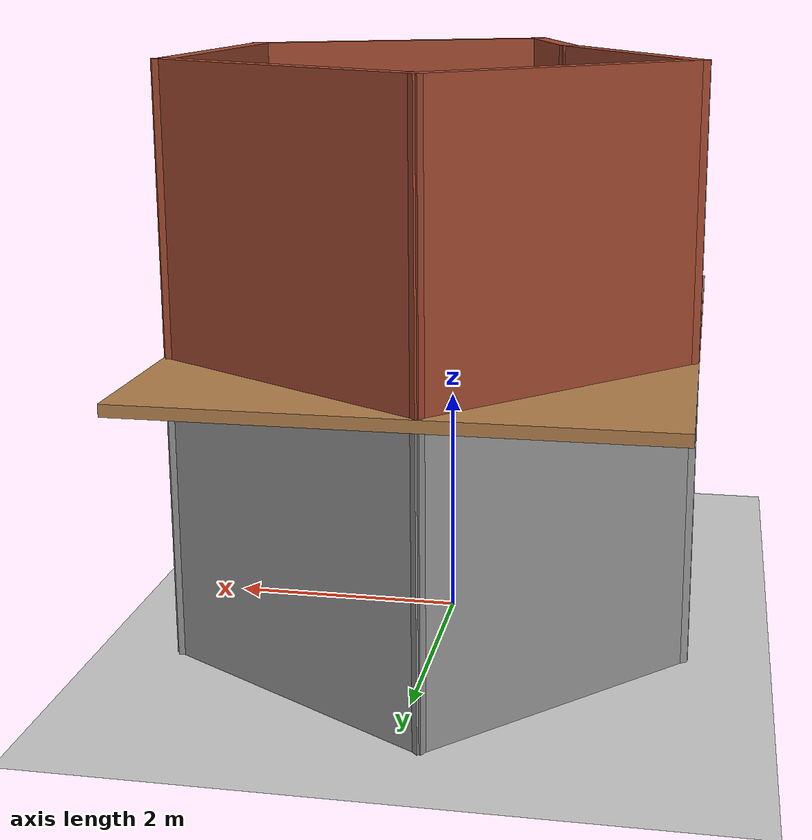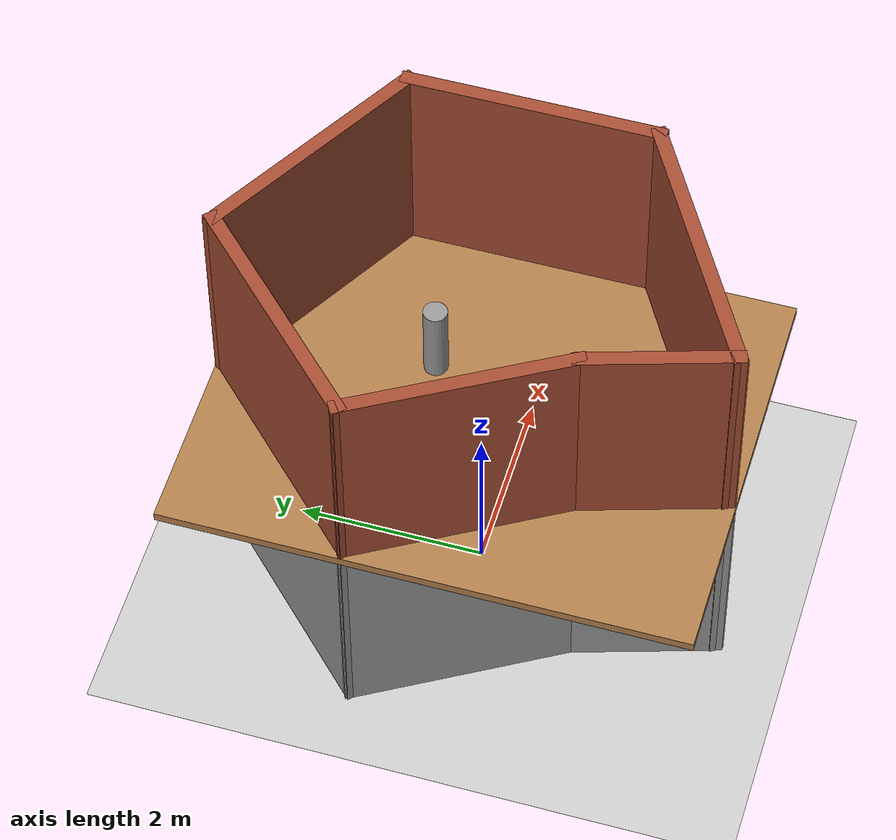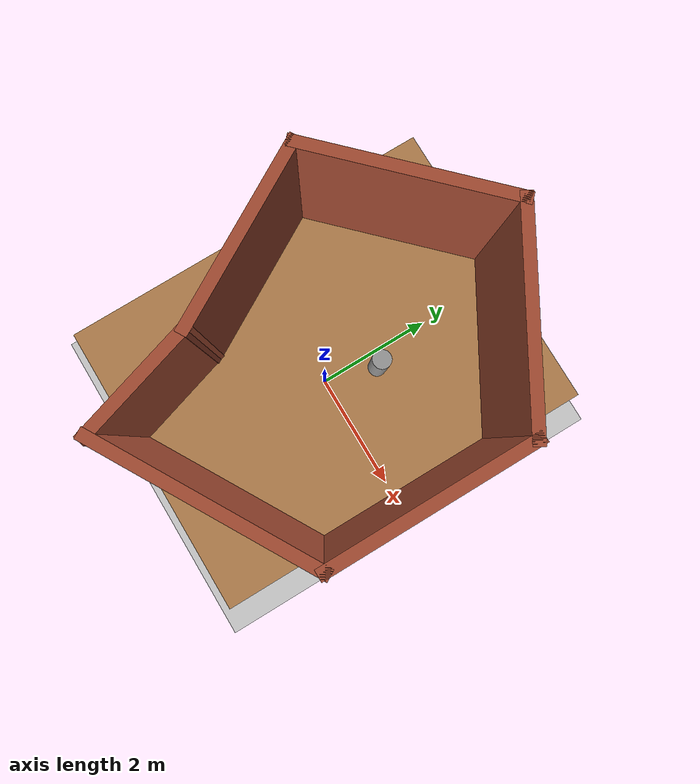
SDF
<sdf version='1.4'>
  <world name='default'>
    <!-- A global light source -->
    <include>
      <uri>model://sun</uri>
    </include>

    <!-- A ground plane -->
    <include>
      <uri>model://ground_plane</uri>
    </include>

    <physics type="ode">
      <real_time_update_rate>1000.0</real_time_update_rate>
      <max_step_size>0.001</max_step_size>
      <real_time_factor>1</real_time_factor>
      <ode>
        <solver>
          <type>quick</type>
          <iters>150</iters>
          <precon_iters>0</precon_iters>
          <sor>1.400000</sor>
          <use_dynamic_moi_rescaling>1</use_dynamic_moi_rescaling>
        </solver>
        <constraints>
          <cfm>0.00001</cfm>
          <erp>0.2</erp>
          <contact_max_correcting_vel>2000.000000</contact_max_correcting_vel>
          <contact_surface_layer>0.01000</contact_surface_layer>
        </constraints>
      </ode>
    </physics>

    <!-- Load world -->

    <include>
	<static>true</static>
	<pose>0 0 0 0 0 0</pose>
      <uri>model://small_poly</uri>
    </include>

	<include>
	<pose>0.4 0.6 3 0 0 0</pose>
      <uri>model://small_cylinder</uri>
    </include>

    <scene>
      <ambient>0.4 0.4 0.4 1</ambient>
      <background>0.7 0.7 0.7 1</background>
      <shadows>true</shadows>
    </scene>

    <gui fullscreen='0'>
      <camera name='user_camera'>
        <pose>0.8 0.0 12.0 0 1.5708 0</pose>
        <view_controller>orbit</view_controller>
      </camera>
    </gui>
  </world>
</sdf>

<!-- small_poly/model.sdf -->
<sdf version='1.6'>
  <model name='small_poly'>
    <pose frame=''>-0.448706 -0.305693 0 0 -0 0</pose>
    <link name='Floor_0'>
      <collision name='Floor_0_Collision'>
        <geometry>
          <box>
            <size>4.29866 5.53352 0.1</size>
          </box>
        </geometry>
        <pose frame=''>0 0 0.05 0 -0 0</pose>
      </collision>
      <visual name='Floor_0_Visual'>
        <pose frame=''>0 0 0.05 0 -0 0</pose>
        <geometry>
          <box>
            <size>4.29866 5.53352 0.1</size>
          </box>
        </geometry>
        <material>
          <script>
            <uri>file://media/materials/scripts/gazebo.material</uri>
            <name>Gazebo/Wood</name>
          </script>
          <ambient>0.996078 0.47451 0.0196078 1</ambient>
        </material>
        <meta>
          <layer>1</layer>
        </meta>
      </visual>
      <pose frame=''>-0 -0 2.5 0 -0 0</pose>
    </link>
    <link name='Wall_0'>
      <collision name='Wall_0_Collision'>
        <geometry>
          <box>
            <size>3 0.15 2.5</size>
          </box>
        </geometry>
        <pose frame=''>0 0 1.25 0 -0 0</pose>
      </collision>
      <visual name='Wall_0_Visual'>
        <pose frame=''>0 0 1.25 0 -0 0</pose>
        <geometry>
          <box>
            <size>3 0.15 2.5</size>
          </box>
        </geometry>
        <material>
          <script>
            <uri>file://media/materials/scripts/gazebo.material</uri>
            <name>Gazebo/Grey</name>
          </script>
          <ambient>1 1 1 1</ambient>
        </material>
        <meta>
          <layer>0</layer>
        </meta>
      </visual>
      <pose frame=''>0.812793 -1.95181 0 0 -0 0.523599</pose>
    </link>
    <link name='Wall_1'>
      <collision name='Wall_1_Collision'>
        <geometry>
          <box>
            <size>2.75 0.15 2.5</size>
          </box>
        </geometry>
        <pose frame=''>0 0 1.25 0 -0 0</pose>
      </collision>
      <visual name='Wall_1_Visual'>
        <pose frame=''>0 0 1.25 0 -0 0</pose>
        <geometry>
          <box>
            <size>2.75 0.15 2.5</size>
          </box>
        </geometry>
        <material>
          <script>
            <uri>file://media/materials/scripts/gazebo.material</uri>
            <name>Gazebo/Grey</name>
          </script>
          <ambient>1 1 1 1</ambient>
        </material>
        <meta>
          <layer>0</layer>
        </meta>
      </visual>
      <pose frame=''>2.04688 0.060693 0 0 -0 1.5708</pose>
    </link>
    <link name='Wall_10'>
      <collision name='Wall_10_Collision'>
        <geometry>
          <box>
            <size>2.75 0.15 2.5</size>
          </box>
        </geometry>
        <pose frame=''>0 0 1.25 0 -0 0</pose>
      </collision>
      <visual name='Wall_10_Visual'>
        <pose frame=''>0 0 1.25 0 -0 0</pose>
        <geometry>
          <box>
            <size>2.75 0.15 2.5</size>
          </box>
        </geometry>
        <material>
          <script>
            <uri>file://media/materials/scripts/gazebo.material</uri>
            <name>Gazebo/Bricks</name>
          </script>
          <ambient>1 1 1 1</ambient>
        </material>
        <meta>
          <layer>1</layer>
        </meta>
      </visual>
      <pose frame=''>-1.12403 1.74145 2.5 0 -0 -2.35619</pose>
    </link>
    <link name='Wall_11'>
      <collision name='Wall_11_Collision'>
        <geometry>
          <box>
            <size>2.5 0.15 2.5</size>
          </box>
        </geometry>
        <pose frame=''>0 0 1.25 0 -0 0</pose>
      </collision>
      <visual name='Wall_11_Visual'>
        <pose frame=''>0 0 1.25 0 -0 0</pose>
        <geometry>
          <box>
            <size>2.5 0.15 2.5</size>
          </box>
        </geometry>
        <material>
          <script>
            <uri>file://media/materials/scripts/gazebo.material</uri>
            <name>Gazebo/Bricks</name>
          </script>
          <ambient>1 1 1 1</ambient>
        </material>
        <meta>
          <layer>1</layer>
        </meta>
      </visual>
      <pose frame=''>-1.45576 -0.195365 2.5 0 -0 -1.0472</pose>
    </link>
    <link name='Wall_12'>
      <collision name='Wall_12_Collision'>
        <geometry>
          <box>
            <size>1.66863 0.15 2.5</size>
          </box>
        </geometry>
        <pose frame=''>0 0 1.25 0 -0 0</pose>
      </collision>
      <visual name='Wall_12_Visual'>
        <pose frame=''>0 0 1.25 0 -0 0</pose>
        <geometry>
          <box>
            <size>1.66863 0.15 2.5</size>
          </box>
        </geometry>
        <material>
          <script>
            <uri>file://media/materials/scripts/gazebo.material</uri>
            <name>Gazebo/Bricks</name>
          </script>
          <ambient>1 1 1 1</ambient>
        </material>
        <meta>
          <layer>1</layer>
        </meta>
      </visual>
      <pose frame=''>-0.644779 -1.93863 2.5 0 -0 -1.27205</pose>
    </link>
    <link name='Wall_2'>
      <collision name='Wall_2_Collision'>
        <geometry>
          <box>
            <size>2.75 0.15 2.5</size>
          </box>
        </geometry>
        <pose frame=''>0 0 1.25 0 -0 0</pose>
      </collision>
      <visual name='Wall_2_Visual'>
        <pose frame=''>0 0 1.25 0 -0 0</pose>
        <geometry>
          <box>
            <size>2.75 0.15 2.5</size>
          </box>
        </geometry>
        <material>
          <script>
            <uri>file://media/materials/scripts/gazebo.material</uri>
            <name>Gazebo/Grey</name>
          </script>
          <ambient>1 1 1 1</ambient>
        </material>
        <meta>
          <layer>0</layer>
        </meta>
      </visual>
      <pose frame=''>0.921046 2.01069 0 0 -0 2.61799</pose>
    </link>
    <link name='Wall_3'>
      <collision name='Wall_3_Collision'>
        <geometry>
          <box>
            <size>2.75 0.15 2.5</size>
          </box>
        </geometry>
        <pose frame=''>0 0 1.25 0 -0 0</pose>
      </collision>
      <visual name='Wall_3_Visual'>
        <pose frame=''>0 0 1.25 0 -0 0</pose>
        <geometry>
          <box>
            <size>2.75 0.15 2.5</size>
          </box>
        </geometry>
        <material>
          <script>
            <uri>file://media/materials/scripts/gazebo.material</uri>
            <name>Gazebo/Grey</name>
          </script>
          <ambient>1 1 1 1</ambient>
        </material>
        <meta>
          <layer>0</layer>
        </meta>
      </visual>
      <pose frame=''>-1.12403 1.74145 0 0 -0 -2.35619</pose>
    </link>
    <link name='Wall_4'>
      <collision name='Wall_4_Collision'>
        <geometry>
          <box>
            <size>2.5 0.15 2.5</size>
          </box>
        </geometry>
        <pose frame=''>0 0 1.25 0 -0 0</pose>
      </collision>
      <visual name='Wall_4_Visual'>
        <pose frame=''>0 0 1.25 0 -0 0</pose>
        <geometry>
          <box>
            <size>2.5 0.15 2.5</size>
          </box>
        </geometry>
        <material>
          <script>
            <uri>file://media/materials/scripts/gazebo.material</uri>
            <name>Gazebo/Grey</name>
          </script>
          <ambient>1 1 1 1</ambient>
        </material>
        <meta>
          <layer>0</layer>
        </meta>
      </visual>
      <pose frame=''>-1.45576 -0.195365 0 0 -0 -1.0472</pose>
    </link>
    <link name='Wall_5'>
      <collision name='Wall_5_Collision'>
        <geometry>
          <box>
            <size>1.66863 0.15 2.5</size>
          </box>
        </geometry>
        <pose frame=''>0 0 1.25 0 -0 0</pose>
      </collision>
      <visual name='Wall_5_Visual'>
        <pose frame=''>0 0 1.25 0 -0 0</pose>
        <geometry>
          <box>
            <size>1.66863 0.15 2.5</size>
          </box>
        </geometry>
        <material>
          <script>
            <uri>file://media/materials/scripts/gazebo.material</uri>
            <name>Gazebo/Grey</name>
          </script>
          <ambient>1 1 1 1</ambient>
        </material>
        <meta>
          <layer>0</layer>
        </meta>
      </visual>
      <pose frame=''>-0.644779 -1.93863 0 0 -0 -1.27205</pose>
    </link>
    <link name='Wall_7'>
      <collision name='Wall_7_Collision'>
        <geometry>
          <box>
            <size>3 0.15 2.5</size>
          </box>
        </geometry>
        <pose frame=''>0 0 1.25 0 -0 0</pose>
      </collision>
      <visual name='Wall_7_Visual'>
        <pose frame=''>0 0 1.25 0 -0 0</pose>
        <geometry>
          <box>
            <size>3 0.15 2.5</size>
          </box>
        </geometry>
        <material>
          <script>
            <uri>file://media/materials/scripts/gazebo.material</uri>
            <name>Gazebo/Bricks</name>
          </script>
          <ambient>1 1 1 1</ambient>
        </material>
        <meta>
          <layer>1</layer>
        </meta>
      </visual>
      <pose frame=''>0.812793 -1.95181 2.5 0 -0 0.523599</pose>
    </link>
    <link name='Wall_8'>
      <collision name='Wall_8_Collision'>
        <geometry>
          <box>
            <size>2.75 0.15 2.5</size>
          </box>
        </geometry>
        <pose frame=''>0 0 1.25 0 -0 0</pose>
      </collision>
      <visual name='Wall_8_Visual'>
        <pose frame=''>0 0 1.25 0 -0 0</pose>
        <geometry>
          <box>
            <size>2.75 0.15 2.5</size>
          </box>
        </geometry>
        <material>
          <script>
            <uri>file://media/materials/scripts/gazebo.material</uri>
            <name>Gazebo/Bricks</name>
          </script>
          <ambient>1 1 1 1</ambient>
        </material>
        <meta>
          <layer>1</layer>
        </meta>
      </visual>
      <pose frame=''>2.04688 0.060693 2.5 0 -0 1.5708</pose>
    </link>
    <link name='Wall_9'>
      <collision name='Wall_9_Collision'>
        <geometry>
          <box>
            <size>2.75 0.15 2.5</size>
          </box>
        </geometry>
        <pose frame=''>0 0 1.25 0 -0 0</pose>
      </collision>
      <visual name='Wall_9_Visual'>
        <pose frame=''>0 0 1.25 0 -0 0</pose>
        <geometry>
          <box>
            <size>2.75 0.15 2.5</size>
          </box>
        </geometry>
        <material>
          <script>
            <uri>file://media/materials/scripts/gazebo.material</uri>
            <name>Gazebo/Bricks</name>
          </script>
          <ambient>1 1 1 1</ambient>
        </material>
        <meta>
          <layer>1</layer>
        </meta>
      </visual>
      <pose frame=''>0.921046 2.01069 2.5 0 -0 2.61799</pose>
    </link>
    <static>1</static>
  </model>
</sdf>

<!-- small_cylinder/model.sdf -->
<sdf version='1.6'>
  <model name='small_cylinder'>
    <link name='link_0'>
      <inertial>
        <mass>0.0645321</mass>
        <inertia>
          <ixx>0.00563792</ixx>
          <ixy>0</ixy>
          <ixz>0</ixz>
          <iyy>0.00563792</iyy>
          <iyz>0</iyz>
          <izz>0.000520485</izz>
        </inertia>
        <pose frame=''>0 0 0 0 -0 0</pose>
      </inertial>
      <pose frame=''>-0 -0 0 0 -0 0</pose>
      <visual name='visual'>
        <pose frame=''>0 0 0 0 -0 0</pose>
        <geometry>
          <cylinder>
            <radius>0.127008</radius>
            <length>1</length>
          </cylinder>
        </geometry>
        <material>
          <lighting>1</lighting>
          <script>
            <uri>file://media/materials/scripts/gazebo.material</uri>
            <name>Gazebo/Grey</name>
          </script>
        </material>
        <transparency>0</transparency>
        <cast_shadows>1</cast_shadows>
      </visual>
      <collision name='collision'>
        <laser_retro>0</laser_retro>
        <max_contacts>10</max_contacts>
        <pose frame=''>0 0 0 0 -0 0</pose>
        <geometry>
          <cylinder>
            <radius>0.127008</radius>
            <length>1</length>
          </cylinder>
        </geometry>
        <surface>
          <friction>
            <ode>
              <mu>1</mu>
              <mu2>1</mu2>
              <fdir1>0 0 0</fdir1>
              <slip1>0</slip1>
              <slip2>0</slip2>
            </ode>
            <torsional>
              <coefficient>1</coefficient>
              <patch_radius>0</patch_radius>
              <surface_radius>0</surface_radius>
              <use_patch_radius>1</use_patch_radius>
              <ode>
                <slip>0</slip>
              </ode>
            </torsional>
          </friction>
          <bounce>
            <restitution_coefficient>0</restitution_coefficient>
            <threshold>1e+06</threshold>
          </bounce>
          <contact>
            <collide_without_contact>0</collide_without_contact>
            <collide_without_contact_bitmask>1</collide_without_contact_bitmask>
            <collide_bitmask>1</collide_bitmask>
            <ode>
              <soft_cfm>0</soft_cfm>
              <soft_erp>0.2</soft_erp>
              <kp>1e+13</kp>
              <kd>1</kd>
              <max_vel>0.01</max_vel>
              <min_depth>0</min_depth>
            </ode>
            <bullet>
              <split_impulse>1</split_impulse>
              <split_impulse_penetration_threshold>-0.01</split_impulse_penetration_threshold>
              <soft_cfm>0</soft_cfm>
              <soft_erp>0.2</soft_erp>
              <kp>1e+13</kp>
              <kd>1</kd>
            </bullet>
          </contact>
        </surface>
      </collision>
    </link>
    <static>0</static>
    <allow_auto_disable>1</allow_auto_disable>
  </model>
</sdf>
